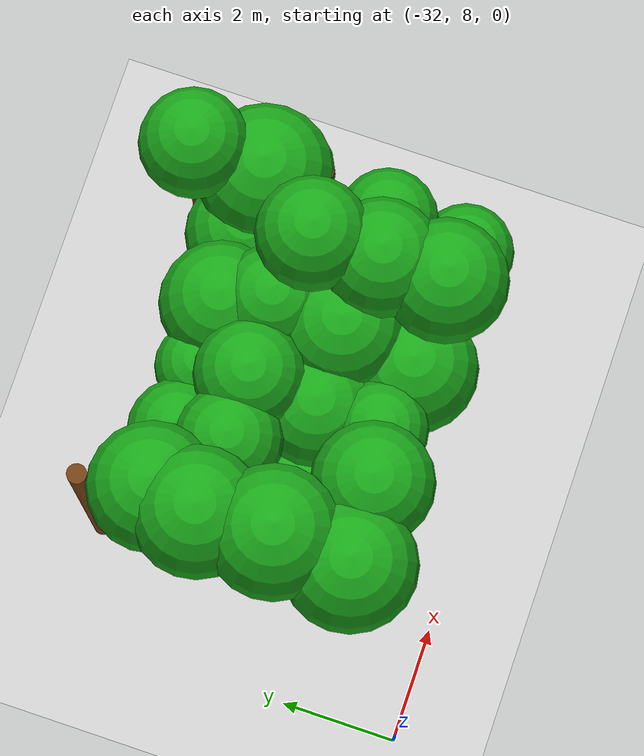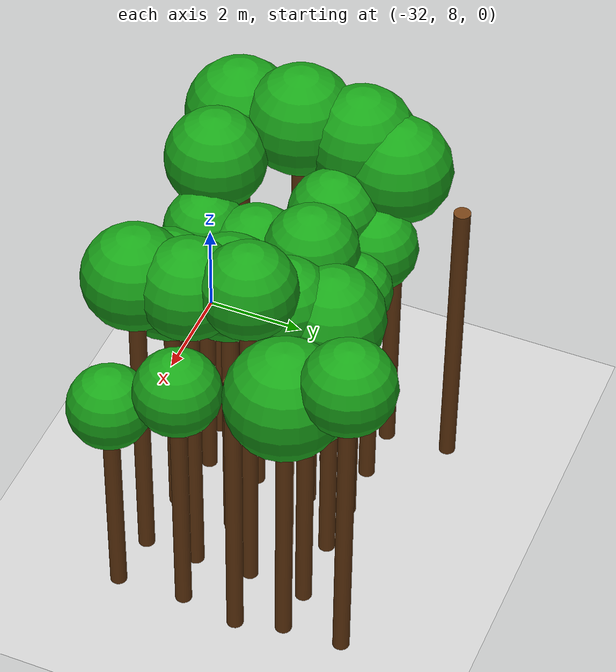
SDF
<sdf version="1.6">
 <world name="forest_world">
  <include><uri>model://sun</uri></include>
  <include><uri>model://ground_plane</uri></include>
  <model name="tree_36_trunk">
   <static>true</static>
   <pose>-30.16 9.52 3.30 0 0 0</pose>
   <link name="link">
    <collision name="collision">
     <geometry><cylinder><radius>0.16</radius><length>6.60</length></cylinder></geometry>
    </collision>
    <visual name="visual">
     <geometry><cylinder><radius>0.16</radius><length>6.60</length></cylinder></geometry>
     <material><ambient>0.35 0.20 0.05 1</ambient><diffuse>0.45 0.25 0.08 1</diffuse></material>
    </visual>
   </link>
  </model>
  <model name="tree_36_leaf">
   <static>true</static>
   <pose>-30.16 9.52 7.22 0 0 0</pose>
   <link name="link">
    <collision name="collision"><geometry><sphere><radius>1.05</radius></sphere></geometry></collision>
    <visual name="visual">
     <geometry><sphere><radius>1.05</radius></sphere></geometry>
     <material><ambient>0.05 0.45 0.05 1</ambient><diffuse>0.10 0.65 0.10 1</diffuse></material>
    </visual>
   </link>
  </model>
  <model name="tree_37_trunk">
   <static>true</static>
   <pose>-30.09 10.75 3.43 0 0 0</pose>
   <link name="link">
    <collision name="collision">
     <geometry><cylinder><radius>0.16</radius><length>6.86</length></cylinder></geometry>
    </collision>
    <visual name="visual">
     <geometry><cylinder><radius>0.16</radius><length>6.86</length></cylinder></geometry>
     <material><ambient>0.35 0.20 0.05 1</ambient><diffuse>0.45 0.25 0.08 1</diffuse></material>
    </visual>
   </link>
  </model>
  <model name="tree_37_leaf">
   <static>true</static>
   <pose>-30.09 10.75 7.49 0 0 0</pose>
   <link name="link">
    <collision name="collision"><geometry><sphere><radius>1.05</radius></sphere></geometry></collision>
    <visual name="visual">
     <geometry><sphere><radius>1.05</radius></sphere></geometry>
     <material><ambient>0.05 0.45 0.05 1</ambient><diffuse>0.10 0.65 0.10 1</diffuse></material>
    </visual>
   </link>
  </model>
  <model name="tree_38_trunk">
   <static>true</static>
   <pose>-30.15 11.94 3.37 0 0 0</pose>
   <link name="link">
    <collision name="collision">
     <geometry><cylinder><radius>0.16</radius><length>6.74</length></cylinder></geometry>
    </collision>
    <visual name="visual">
     <geometry><cylinder><radius>0.16</radius><length>6.74</length></cylinder></geometry>
     <material><ambient>0.35 0.20 0.05 1</ambient><diffuse>0.45 0.25 0.08 1</diffuse></material>
    </visual>
   </link>
  </model>
  <model name="tree_38_leaf">
   <static>true</static>
   <pose>-30.15 11.94 7.36 0 0 0</pose>
   <link name="link">
    <collision name="collision"><geometry><sphere><radius>1.03</radius></sphere></geometry></collision>
    <visual name="visual">
     <geometry><sphere><radius>1.03</radius></sphere></geometry>
     <material><ambient>0.05 0.45 0.05 1</ambient><diffuse>0.10 0.65 0.10 1</diffuse></material>
    </visual>
   </link>
  </model>
  <model name="tree_39_trunk">
   <static>true</static>
   <pose>-29.97 12.73 3.22 0 0 0</pose>
   <link name="link">
    <collision name="collision">
     <geometry><cylinder><radius>0.16</radius><length>6.44</length></cylinder></geometry>
    </collision>
    <visual name="visual">
     <geometry><cylinder><radius>0.16</radius><length>6.44</length></cylinder></geometry>
     <material><ambient>0.35 0.20 0.05 1</ambient><diffuse>0.45 0.25 0.08 1</diffuse></material>
    </visual>
   </link>
  </model>
  <model name="tree_39_leaf">
   <static>true</static>
   <pose>-29.97 12.73 7.05 0 0 0</pose>
   <link name="link">
    <collision name="collision"><geometry><sphere><radius>1.02</radius></sphere></geometry></collision>
    <visual name="visual">
     <geometry><sphere><radius>1.02</radius></sphere></geometry>
     <material><ambient>0.05 0.45 0.05 1</ambient><diffuse>0.10 0.65 0.10 1</diffuse></material>
    </visual>
   </link>
  </model>
  <model name="tree_40_trunk">
   <static>true</static>
   <pose>-30.07 13.97 3.17 0 0 0</pose>
   <link name="link">
    <collision name="collision">
     <geometry><cylinder><radius>0.16</radius><length>6.34</length></cylinder></geometry>
    </collision>
    <visual name="visual">
     <geometry><cylinder><radius>0.16</radius><length>6.34</length></cylinder></geometry>
     <material><ambient>0.35 0.20 0.05 1</ambient><diffuse>0.45 0.25 0.08 1</diffuse></material>
    </visual>
   </link>
  </model>
  <model name="tree_91_trunk">
   <static>true</static>
   <pose>-28.86 9.59 3.29 0 0 0</pose>
   <link name="link">
    <collision name="collision">
     <geometry><cylinder><radius>0.16</radius><length>6.57</length></cylinder></geometry>
    </collision>
    <visual name="visual">
     <geometry><cylinder><radius>0.16</radius><length>6.57</length></cylinder></geometry>
     <material><ambient>0.35 0.20 0.05 1</ambient><diffuse>0.45 0.25 0.08 1</diffuse></material>
    </visual>
   </link>
  </model>
  <model name="tree_91_leaf">
   <static>true</static>
   <pose>-28.86 9.59 7.15 0 0 0</pose>
   <link name="link">
    <collision name="collision"><geometry><sphere><radius>0.96</radius></sphere></geometry></collision>
    <visual name="visual">
     <geometry><sphere><radius>0.96</radius></sphere></geometry>
     <material><ambient>0.05 0.45 0.05 1</ambient><diffuse>0.10 0.65 0.10 1</diffuse></material>
    </visual>
   </link>
  </model>
  <model name="tree_92_trunk">
   <static>true</static>
   <pose>-28.99 10.71 2.15 0 0 0</pose>
   <link name="link">
    <collision name="collision">
     <geometry><cylinder><radius>0.16</radius><length>4.30</length></cylinder></geometry>
    </collision>
    <visual name="visual">
     <geometry><cylinder><radius>0.16</radius><length>4.30</length></cylinder></geometry>
     <material><ambient>0.35 0.20 0.05 1</ambient><diffuse>0.45 0.25 0.08 1</diffuse></material>
    </visual>
   </link>
  </model>
  <model name="tree_92_leaf">
   <static>true</static>
   <pose>-28.99 10.71 4.82 0 0 0</pose>
   <link name="link">
    <collision name="collision"><geometry><sphere><radius>0.87</radius></sphere></geometry></collision>
    <visual name="visual">
     <geometry><sphere><radius>0.87</radius></sphere></geometry>
     <material><ambient>0.05 0.45 0.05 1</ambient><diffuse>0.10 0.65 0.10 1</diffuse></material>
    </visual>
   </link>
  </model>
  <model name="tree_93_trunk">
   <static>true</static>
   <pose>-28.86 11.91 3.04 0 0 0</pose>
   <link name="link">
    <collision name="collision">
     <geometry><cylinder><radius>0.16</radius><length>6.09</length></cylinder></geometry>
    </collision>
    <visual name="visual">
     <geometry><cylinder><radius>0.16</radius><length>6.09</length></cylinder></geometry>
     <material><ambient>0.35 0.20 0.05 1</ambient><diffuse>0.45 0.25 0.08 1</diffuse></material>
    </visual>
   </link>
  </model>
  <model name="tree_93_leaf">
   <static>true</static>
   <pose>-28.86 11.91 6.60 0 0 0</pose>
   <link name="link">
    <collision name="collision"><geometry><sphere><radius>0.85</radius></sphere></geometry></collision>
    <visual name="visual">
     <geometry><sphere><radius>0.85</radius></sphere></geometry>
     <material><ambient>0.05 0.45 0.05 1</ambient><diffuse>0.10 0.65 0.10 1</diffuse></material>
    </visual>
   </link>
  </model>
  <model name="tree_94_trunk">
   <static>true</static>
   <pose>-28.88 12.73 2.78 0 0 0</pose>
   <link name="link">
    <collision name="collision">
     <geometry><cylinder><radius>0.16</radius><length>5.56</length></cylinder></geometry>
    </collision>
    <visual name="visual">
     <geometry><cylinder><radius>0.16</radius><length>5.56</length></cylinder></geometry>
     <material><ambient>0.35 0.20 0.05 1</ambient><diffuse>0.45 0.25 0.08 1</diffuse></material>
    </visual>
   </link>
  </model>
  <model name="tree_94_leaf">
   <static>true</static>
   <pose>-28.88 12.73 6.05 0 0 0</pose>
   <link name="link">
    <collision name="collision"><geometry><sphere><radius>0.81</radius></sphere></geometry></collision>
    <visual name="visual">
     <geometry><sphere><radius>0.81</radius></sphere></geometry>
     <material><ambient>0.05 0.45 0.05 1</ambient><diffuse>0.10 0.65 0.10 1</diffuse></material>
    </visual>
   </link>
  </model>
  <model name="tree_146_trunk">
   <static>true</static>
   <pose>-27.91 9.78 2.90 0 0 0</pose>
   <link name="link">
    <collision name="collision">
     <geometry><cylinder><radius>0.16</radius><length>5.81</length></cylinder></geometry>
    </collision>
    <visual name="visual">
     <geometry><cylinder><radius>0.16</radius><length>5.81</length></cylinder></geometry>
     <material><ambient>0.35 0.20 0.05 1</ambient><diffuse>0.45 0.25 0.08 1</diffuse></material>
    </visual>
   </link>
  </model>
  <model name="tree_146_leaf">
   <static>true</static>
   <pose>-27.91 9.78 6.27 0 0 0</pose>
   <link name="link">
    <collision name="collision"><geometry><sphere><radius>0.77</radius></sphere></geometry></collision>
    <visual name="visual">
     <geometry><sphere><radius>0.77</radius></sphere></geometry>
     <material><ambient>0.05 0.45 0.05 1</ambient><diffuse>0.10 0.65 0.10 1</diffuse></material>
    </visual>
   </link>
  </model>
  <model name="tree_147_trunk">
   <static>true</static>
   <pose>-27.86 10.82 2.74 0 0 0</pose>
   <link name="link">
    <collision name="collision">
     <geometry><cylinder><radius>0.16</radius><length>5.48</length></cylinder></geometry>
    </collision>
    <visual name="visual">
     <geometry><cylinder><radius>0.16</radius><length>5.48</length></cylinder></geometry>
     <material><ambient>0.35 0.20 0.05 1</ambient><diffuse>0.45 0.25 0.08 1</diffuse></material>
    </visual>
   </link>
  </model>
  <model name="tree_147_leaf">
   <static>true</static>
   <pose>-27.86 10.82 6.05 0 0 0</pose>
   <link name="link">
    <collision name="collision"><geometry><sphere><radius>0.95</radius></sphere></geometry></collision>
    <visual name="visual">
     <geometry><sphere><radius>0.95</radius></sphere></geometry>
     <material><ambient>0.05 0.45 0.05 1</ambient><diffuse>0.10 0.65 0.10 1</diffuse></material>
    </visual>
   </link>
  </model>
  <model name="tree_148_trunk">
   <static>true</static>
   <pose>-27.79 11.93 3.04 0 0 0</pose>
   <link name="link">
    <collision name="collision">
     <geometry><cylinder><radius>0.16</radius><length>6.08</length></cylinder></geometry>
    </collision>
    <visual name="visual">
     <geometry><cylinder><radius>0.16</radius><length>6.08</length></cylinder></geometry>
     <material><ambient>0.35 0.20 0.05 1</ambient><diffuse>0.45 0.25 0.08 1</diffuse></material>
    </visual>
   </link>
  </model>
  <model name="tree_148_leaf">
   <static>true</static>
   <pose>-27.79 11.93 6.61 0 0 0</pose>
   <link name="link">
    <collision name="collision"><geometry><sphere><radius>0.88</radius></sphere></geometry></collision>
    <visual name="visual">
     <geometry><sphere><radius>0.88</radius></sphere></geometry>
     <material><ambient>0.05 0.45 0.05 1</ambient><diffuse>0.10 0.65 0.10 1</diffuse></material>
    </visual>
   </link>
  </model>
  <model name="tree_149_trunk">
   <static>true</static>
   <pose>-27.81 12.76 2.75 0 0 0</pose>
   <link name="link">
    <collision name="collision">
     <geometry><cylinder><radius>0.16</radius><length>5.49</length></cylinder></geometry>
    </collision>
    <visual name="visual">
     <geometry><cylinder><radius>0.16</radius><length>5.49</length></cylinder></geometry>
     <material><ambient>0.35 0.20 0.05 1</ambient><diffuse>0.45 0.25 0.08 1</diffuse></material>
    </visual>
   </link>
  </model>
  <model name="tree_149_leaf">
   <static>true</static>
   <pose>-27.81 12.76 5.92 0 0 0</pose>
   <link name="link">
    <collision name="collision"><geometry><sphere><radius>0.71</radius></sphere></geometry></collision>
    <visual name="visual">
     <geometry><sphere><radius>0.71</radius></sphere></geometry>
     <material><ambient>0.05 0.45 0.05 1</ambient><diffuse>0.10 0.65 0.10 1</diffuse></material>
    </visual>
   </link>
  </model>
  <model name="tree_201_trunk">
   <static>true</static>
   <pose>-26.76 9.61 2.59 0 0 0</pose>
   <link name="link">
    <collision name="collision">
     <geometry><cylinder><radius>0.16</radius><length>5.19</length></cylinder></geometry>
    </collision>
    <visual name="visual">
     <geometry><cylinder><radius>0.16</radius><length>5.19</length></cylinder></geometry>
     <material><ambient>0.35 0.20 0.05 1</ambient><diffuse>0.45 0.25 0.08 1</diffuse></material>
    </visual>
   </link>
  </model>
  <model name="tree_201_leaf">
   <static>true</static>
   <pose>-26.76 9.61 5.82 0 0 0</pose>
   <link name="link">
    <collision name="collision"><geometry><sphere><radius>1.05</radius></sphere></geometry></collision>
    <visual name="visual">
     <geometry><sphere><radius>1.05</radius></sphere></geometry>
     <material><ambient>0.05 0.45 0.05 1</ambient><diffuse>0.10 0.65 0.10 1</diffuse></material>
    </visual>
   </link>
  </model>
  <model name="tree_202_trunk">
   <static>true</static>
   <pose>-26.60 10.84 2.88 0 0 0</pose>
   <link name="link">
    <collision name="collision">
     <geometry><cylinder><radius>0.16</radius><length>5.75</length></cylinder></geometry>
    </collision>
    <visual name="visual">
     <geometry><cylinder><radius>0.16</radius><length>5.75</length></cylinder></geometry>
     <material><ambient>0.35 0.20 0.05 1</ambient><diffuse>0.45 0.25 0.08 1</diffuse></material>
    </visual>
   </link>
  </model>
  <model name="tree_202_leaf">
   <static>true</static>
   <pose>-26.60 10.84 6.35 0 0 0</pose>
   <link name="link">
    <collision name="collision"><geometry><sphere><radius>1.00</radius></sphere></geometry></collision>
    <visual name="visual">
     <geometry><sphere><radius>1.00</radius></sphere></geometry>
     <material><ambient>0.05 0.45 0.05 1</ambient><diffuse>0.10 0.65 0.10 1</diffuse></material>
    </visual>
   </link>
  </model>
  <model name="tree_203_trunk">
   <static>true</static>
   <pose>-26.53 11.98 2.97 0 0 0</pose>
   <link name="link">
    <collision name="collision">
     <geometry><cylinder><radius>0.16</radius><length>5.95</length></cylinder></geometry>
    </collision>
    <visual name="visual">
     <geometry><cylinder><radius>0.16</radius><length>5.95</length></cylinder></geometry>
     <material><ambient>0.35 0.20 0.05 1</ambient><diffuse>0.45 0.25 0.08 1</diffuse></material>
    </visual>
   </link>
  </model>
  <model name="tree_203_leaf">
   <static>true</static>
   <pose>-26.53 11.98 6.46 0 0 0</pose>
   <link name="link">
    <collision name="collision"><geometry><sphere><radius>0.86</radius></sphere></geometry></collision>
    <visual name="visual">
     <geometry><sphere><radius>0.86</radius></sphere></geometry>
     <material><ambient>0.05 0.45 0.05 1</ambient><diffuse>0.10 0.65 0.10 1</diffuse></material>
    </visual>
   </link>
  </model>
  <model name="tree_204_trunk">
   <static>true</static>
   <pose>-26.79 12.74 2.77 0 0 0</pose>
   <link name="link">
    <collision name="collision">
     <geometry><cylinder><radius>0.16</radius><length>5.55</length></cylinder></geometry>
    </collision>
    <visual name="visual">
     <geometry><cylinder><radius>0.16</radius><length>5.55</length></cylinder></geometry>
     <material><ambient>0.35 0.20 0.05 1</ambient><diffuse>0.45 0.25 0.08 1</diffuse></material>
    </visual>
   </link>
  </model>
  <model name="tree_204_leaf">
   <static>true</static>
   <pose>-26.79 12.74 6.14 0 0 0</pose>
   <link name="link">
    <collision name="collision"><geometry><sphere><radius>0.99</radius></sphere></geometry></collision>
    <visual name="visual">
     <geometry><sphere><radius>0.99</radius></sphere></geometry>
     <material><ambient>0.05 0.45 0.05 1</ambient><diffuse>0.10 0.65 0.10 1</diffuse></material>
    </visual>
   </link>
  </model>
  <model name="tree_256_trunk">
   <static>true</static>
   <pose>-25.53 9.52 3.24 0 0 0</pose>
   <link name="link">
    <collision name="collision">
     <geometry><cylinder><radius>0.16</radius><length>6.47</length></cylinder></geometry>
    </collision>
    <visual name="visual">
     <geometry><cylinder><radius>0.16</radius><length>6.47</length></cylinder></geometry>
     <material><ambient>0.35 0.20 0.05 1</ambient><diffuse>0.45 0.25 0.08 1</diffuse></material>
    </visual>
   </link>
  </model>
  <model name="tree_256_leaf">
   <static>true</static>
   <pose>-25.53 9.52 7.06 0 0 0</pose>
   <link name="link">
    <collision name="collision"><geometry><sphere><radius>0.98</radius></sphere></geometry></collision>
    <visual name="visual">
     <geometry><sphere><radius>0.98</radius></sphere></geometry>
     <material><ambient>0.05 0.45 0.05 1</ambient><diffuse>0.10 0.65 0.10 1</diffuse></material>
    </visual>
   </link>
  </model>
  <model name="tree_257_trunk">
   <static>true</static>
   <pose>-25.53 10.56 3.30 0 0 0</pose>
   <link name="link">
    <collision name="collision">
     <geometry><cylinder><radius>0.16</radius><length>6.61</length></cylinder></geometry>
    </collision>
    <visual name="visual">
     <geometry><cylinder><radius>0.16</radius><length>6.61</length></cylinder></geometry>
     <material><ambient>0.35 0.20 0.05 1</ambient><diffuse>0.45 0.25 0.08 1</diffuse></material>
    </visual>
   </link>
  </model>
  <model name="tree_257_leaf">
   <static>true</static>
   <pose>-25.53 10.56 7.17 0 0 0</pose>
   <link name="link">
    <collision name="collision"><geometry><sphere><radius>0.94</radius></sphere></geometry></collision>
    <visual name="visual">
     <geometry><sphere><radius>0.94</radius></sphere></geometry>
     <material><ambient>0.05 0.45 0.05 1</ambient><diffuse>0.10 0.65 0.10 1</diffuse></material>
    </visual>
   </link>
  </model>
  <model name="tree_258_trunk">
   <static>true</static>
   <pose>-25.58 11.66 3.48 0 0 0</pose>
   <link name="link">
    <collision name="collision">
     <geometry><cylinder><radius>0.16</radius><length>6.96</length></cylinder></geometry>
    </collision>
    <visual name="visual">
     <geometry><cylinder><radius>0.16</radius><length>6.96</length></cylinder></geometry>
     <material><ambient>0.35 0.20 0.05 1</ambient><diffuse>0.45 0.25 0.08 1</diffuse></material>
    </visual>
   </link>
  </model>
  <model name="tree_258_leaf">
   <static>true</static>
   <pose>-25.58 11.66 7.50 0 0 0</pose>
   <link name="link">
    <collision name="collision"><geometry><sphere><radius>0.89</radius></sphere></geometry></collision>
    <visual name="visual">
     <geometry><sphere><radius>0.89</radius></sphere></geometry>
     <material><ambient>0.05 0.45 0.05 1</ambient><diffuse>0.10 0.65 0.10 1</diffuse></material>
    </visual>
   </link>
  </model>
  <model name="tree_259_trunk">
   <static>true</static>
   <pose>-25.49 12.80 2.45 0 0 0</pose>
   <link name="link">
    <collision name="collision">
     <geometry><cylinder><radius>0.16</radius><length>4.91</length></cylinder></geometry>
    </collision>
    <visual name="visual">
     <geometry><cylinder><radius>0.16</radius><length>4.91</length></cylinder></geometry>
     <material><ambient>0.35 0.20 0.05 1</ambient><diffuse>0.45 0.25 0.08 1</diffuse></material>
    </visual>
   </link>
  </model>
  <model name="tree_259_leaf">
   <static>true</static>
   <pose>-25.49 12.80 5.49 0 0 0</pose>
   <link name="link">
    <collision name="collision"><geometry><sphere><radius>0.97</radius></sphere></geometry></collision>
    <visual name="visual">
     <geometry><sphere><radius>0.97</radius></sphere></geometry>
     <material><ambient>0.05 0.45 0.05 1</ambient><diffuse>0.10 0.65 0.10 1</diffuse></material>
    </visual>
   </link>
  </model>
  <model name="tree_311_trunk">
   <static>true</static>
   <pose>-24.48 9.42 2.13 0 0 0</pose>
   <link name="link">
    <collision name="collision">
     <geometry><cylinder><radius>0.16</radius><length>4.26</length></cylinder></geometry>
    </collision>
    <visual name="visual">
     <geometry><cylinder><radius>0.16</radius><length>4.26</length></cylinder></geometry>
     <material><ambient>0.35 0.20 0.05 1</ambient><diffuse>0.45 0.25 0.08 1</diffuse></material>
    </visual>
   </link>
  </model>
  <model name="tree_311_leaf">
   <static>true</static>
   <pose>-24.48 9.42 4.73 0 0 0</pose>
   <link name="link">
    <collision name="collision"><geometry><sphere><radius>0.79</radius></sphere></geometry></collision>
    <visual name="visual">
     <geometry><sphere><radius>0.79</radius></sphere></geometry>
     <material><ambient>0.05 0.45 0.05 1</ambient><diffuse>0.10 0.65 0.10 1</diffuse></material>
    </visual>
   </link>
  </model>
  <model name="tree_312_trunk">
   <static>true</static>
   <pose>-24.55 10.74 2.54 0 0 0</pose>
   <link name="link">
    <collision name="collision">
     <geometry><cylinder><radius>0.16</radius><length>5.09</length></cylinder></geometry>
    </collision>
    <visual name="visual">
     <geometry><cylinder><radius>0.16</radius><length>5.09</length></cylinder></geometry>
     <material><ambient>0.35 0.20 0.05 1</ambient><diffuse>0.45 0.25 0.08 1</diffuse></material>
    </visual>
   </link>
  </model>
  <model name="tree_312_leaf">
   <static>true</static>
   <pose>-24.55 10.74 5.57 0 0 0</pose>
   <link name="link">
    <collision name="collision"><geometry><sphere><radius>0.81</radius></sphere></geometry></collision>
    <visual name="visual">
     <geometry><sphere><radius>0.81</radius></sphere></geometry>
     <material><ambient>0.05 0.45 0.05 1</ambient><diffuse>0.10 0.65 0.10 1</diffuse></material>
    </visual>
   </link>
  </model>
  <model name="tree_313_trunk">
   <static>true</static>
   <pose>-24.37 11.88 3.24 0 0 0</pose>
   <link name="link">
    <collision name="collision">
     <geometry><cylinder><radius>0.16</radius><length>6.47</length></cylinder></geometry>
    </collision>
    <visual name="visual">
     <geometry><cylinder><radius>0.16</radius><length>6.47</length></cylinder></geometry>
     <material><ambient>0.35 0.20 0.05 1</ambient><diffuse>0.45 0.25 0.08 1</diffuse></material>
    </visual>
   </link>
  </model>
  <model name="tree_314_trunk">
   <static>true</static>
   <pose>-24.61 12.76 2.76 0 0 0</pose>
   <link name="link">
    <collision name="collision">
     <geometry><cylinder><radius>0.16</radius><length>5.52</length></cylinder></geometry>
    </collision>
    <visual name="visual">
     <geometry><cylinder><radius>0.16</radius><length>5.52</length></cylinder></geometry>
     <material><ambient>0.35 0.20 0.05 1</ambient><diffuse>0.45 0.25 0.08 1</diffuse></material>
    </visual>
   </link>
  </model>
  <model name="tree_314_leaf">
   <static>true</static>
   <pose>-24.61 12.76 6.18 0 0 0</pose>
   <link name="link">
    <collision name="collision"><geometry><sphere><radius>1.10</radius></sphere></geometry></collision>
    <visual name="visual">
     <geometry><sphere><radius>1.10</radius></sphere></geometry>
     <material><ambient>0.05 0.45 0.05 1</ambient><diffuse>0.10 0.65 0.10 1</diffuse></material>
    </visual>
   </link>
  </model>
  <model name="tree_315_trunk">
   <static>true</static>
   <pose>-24.67 13.90 3.17 0 0 0</pose>
   <link name="link">
    <collision name="collision">
     <geometry><cylinder><radius>0.16</radius><length>6.35</length></cylinder></geometry>
    </collision>
    <visual name="visual">
     <geometry><cylinder><radius>0.16</radius><length>6.35</length></cylinder></geometry>
     <material><ambient>0.35 0.20 0.05 1</ambient><diffuse>0.45 0.25 0.08 1</diffuse></material>
    </visual>
   </link>
  </model>
  <model name="tree_315_leaf">
   <static>true</static>
   <pose>-24.67 13.90 6.87 0 0 0</pose>
   <link name="link">
    <collision name="collision"><geometry><sphere><radius>0.87</radius></sphere></geometry></collision>
    <visual name="visual">
     <geometry><sphere><radius>0.87</radius></sphere></geometry>
     <material><ambient>0.05 0.45 0.05 1</ambient><diffuse>0.10 0.65 0.10 1</diffuse></material>
    </visual>
   </link>
  </model>
 </world>
</sdf>
